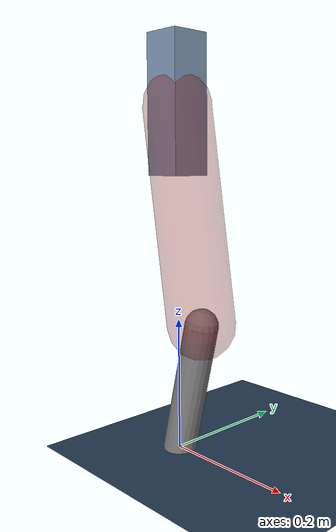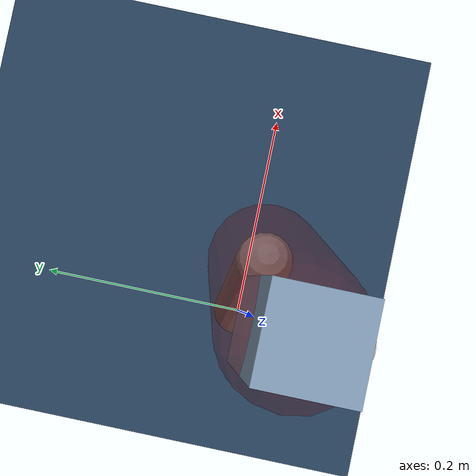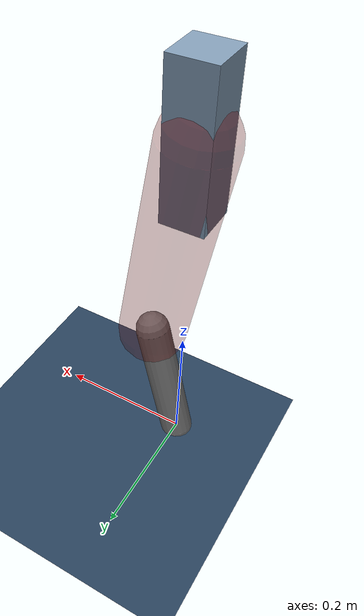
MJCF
<mujoco model="Hopper2D">
	<compiler inertiafromgeom="true" angle="radian" />
	<option timestep="0.001" integrator="implicit" cone="elliptic" solver="Newton" tolerance="1e-10" />

	<default>
		<geom contype="1" conaffinity="1" condim="3" friction="2 0.005 0.0001" solref="0.005 1" />
		<joint limited="true" damping="0.1" />
	</default>

	<asset>
		<texture name="skybox" type="skybox" builtin="gradient" rgb1=".4 .6 .8" rgb2="0 0 0" width="800" height="800" />
		<texture name="grid" type="2d" builtin="checker" rgb1=".1 .2 .3" rgb2=".2 .3 .4" width="300" height="300" mark="edge" markrgb=".2 .3 .4" />
		<material name="ground" texture="grid" texrepeat="1 1" texuniform="true" reflectance="0.1" />
		<material name="leg" rgba="0.5 0.6 0.7 1" />
	</asset>

	<worldbody>

		<geom name="floor" type="plane" size="5 5 0.25" material="ground" />

		<light directional="false" diffuse="0.8 0.8 0.8" specular="0.3 0.3 0.3" pos="0 0 2" dir="0 0 -1" />
		<light mode="targetbodycom" target="base" directional="false" diffuse="0.8 0.8 0.8" specular="0.3 0.3 0.3" pos="0 0 2" dir="0 0 -1" />

		<camera name="fixed" pos="0 -2 1" xyaxes="1 0 0 0 0 1" />
		<camera name="tracking" mode="trackcom" pos="0 -3 1" />

		<body name="root" pos="0 0 0.5146460544894885">
			<joint name="slide_x" type="slide" axis="1 0 0" range="-100 100" />
			<joint name="slide_z" type="slide" axis="0 0 1" range="0 10" />

			<body name="base" pos="0 0 0">
				<geom name="torso" type="box" size="0.03 0.03 0.1" mass="2.277" material="leg" />

				<body name="link1" pos="0 0 0" euler="0 1.413992974589883 0">
					<joint type="hinge" axis="0 -1 0" pos="0 0 0" name="hinge1" limited="true" range="-3.14 3.14" stiffness="0" damping="0.1" />
					<geom name="thigh" type="capsule" fromto="0 0 0 0.3185291731237241 0 0" size="0.05" rgba="0.5 0 0 0.3" mass="1.039228767434055" />

					<body name="link2" pos="0.3185291731237241 0 0" euler="0 0.4005386382277404 0">
						<joint type="hinge" axis="0 -1 0" pos="0 0 0" name="hinge2" limited="true" range="-3.14 3.14" stiffness="0" damping="0.1" />
						<geom name="shank" type="capsule" fromto="0 0 0 0.20611688136576442 0 0" size="0.025" mass="0.406005193229188" />

					</body>
				</body>
			</body>
		</body>
	</worldbody>

	<actuator>
		<motor name="torque1" joint="hinge1" ctrlrange="-60.92605549606522 60.92605549606522" ctrllimited="true" gear="1" />
		<motor name="torque2" joint="hinge2" ctrlrange="-94.48739304402926 94.48739304402926" ctrllimited="true" gear="1" />
	</actuator>
</mujoco>
